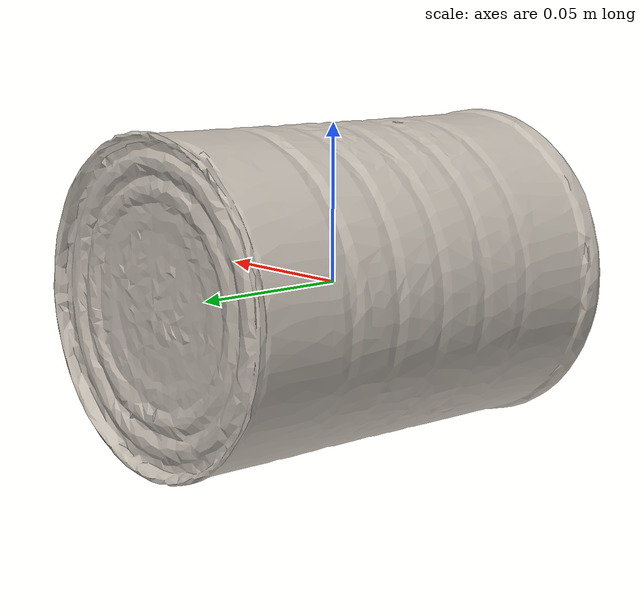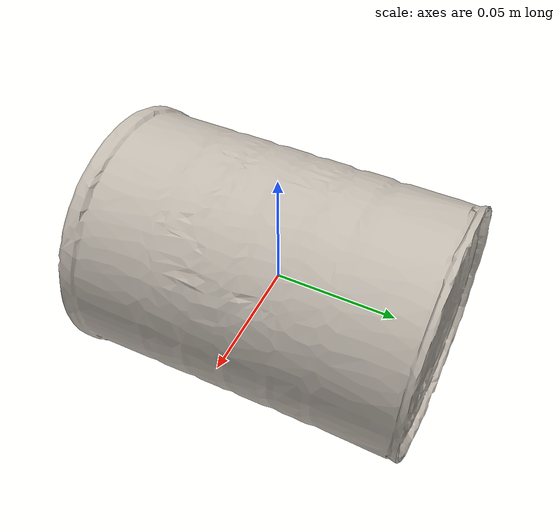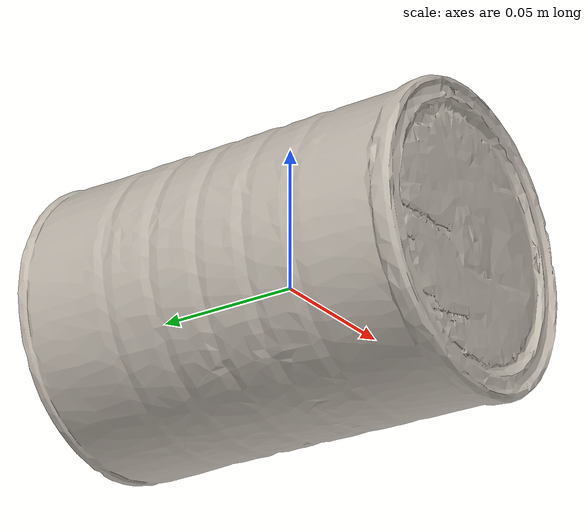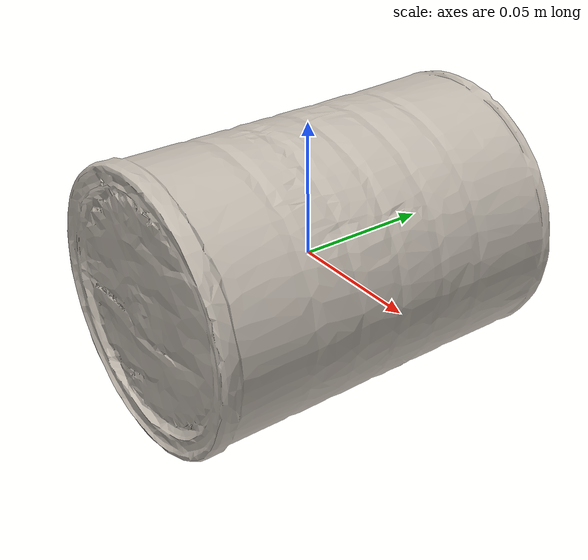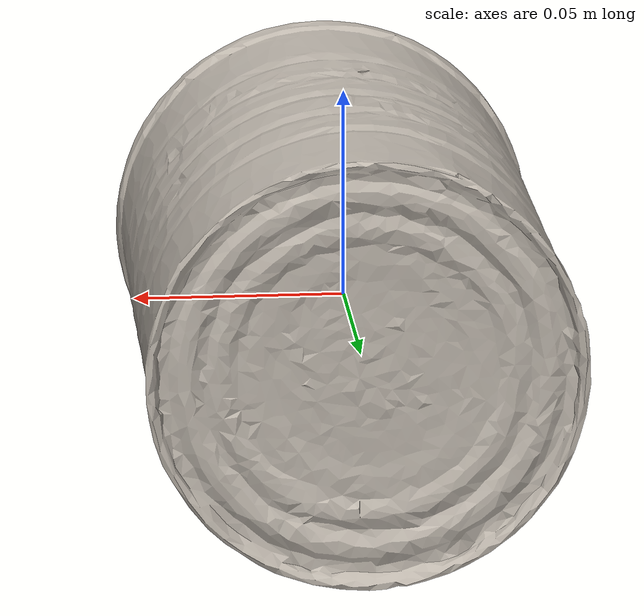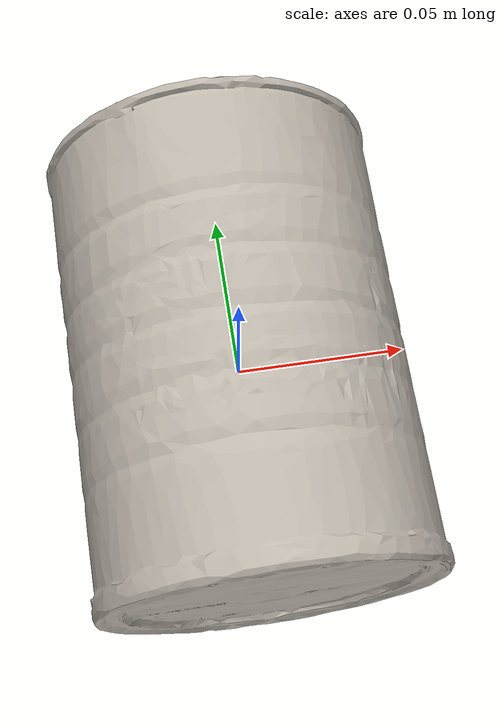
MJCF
<mujoco model="master_chef_can_flipped">
  <compiler angle="radian" />

  <asset>
    <mesh name="master_chef_can_flipped_visual_mesh" file="master_chef_can_flipped/textured.obj" />
    <mesh name="master_chef_can_flipped_collision_mesh" file="master_chef_can_flipped/textured_primitive.stl" />
    <texture name="master_chef_can_flipped_texture" type="2d" file="master_chef_can_flipped/texture_map.png" />
    <material name="master_chef_can_flipped_material" texture="master_chef_can_flipped_texture" />
  </asset>

  <worldbody>
    <body name="master_chef_can_flipped" pos="0 0 0" euler="0 0 0">
      <freejoint name="master_chef_can_flipped_joint" />
      <geom name="master_chef_can_flipped_visual_geom" type="mesh" mesh="master_chef_can_flipped_visual_mesh" material="master_chef_can_flipped_material" pos="-0.0 0.0 0.0" euler="0 0 0" contype="0" conaffinity="0" group="0" />
      <geom name="master_chef_can_flipped_collision_geom" type="mesh" mesh="master_chef_can_flipped_collision_mesh" pos="-0.0 0.0 0.0" euler="0 0 0" contype="1" conaffinity="1" group="3" />
      <inertial pos="0 0 0" euler="0 0 0" mass="0.414" diaginertia="0.001 0.001 0.001" />
    </body>
  </worldbody>
</mujoco>
